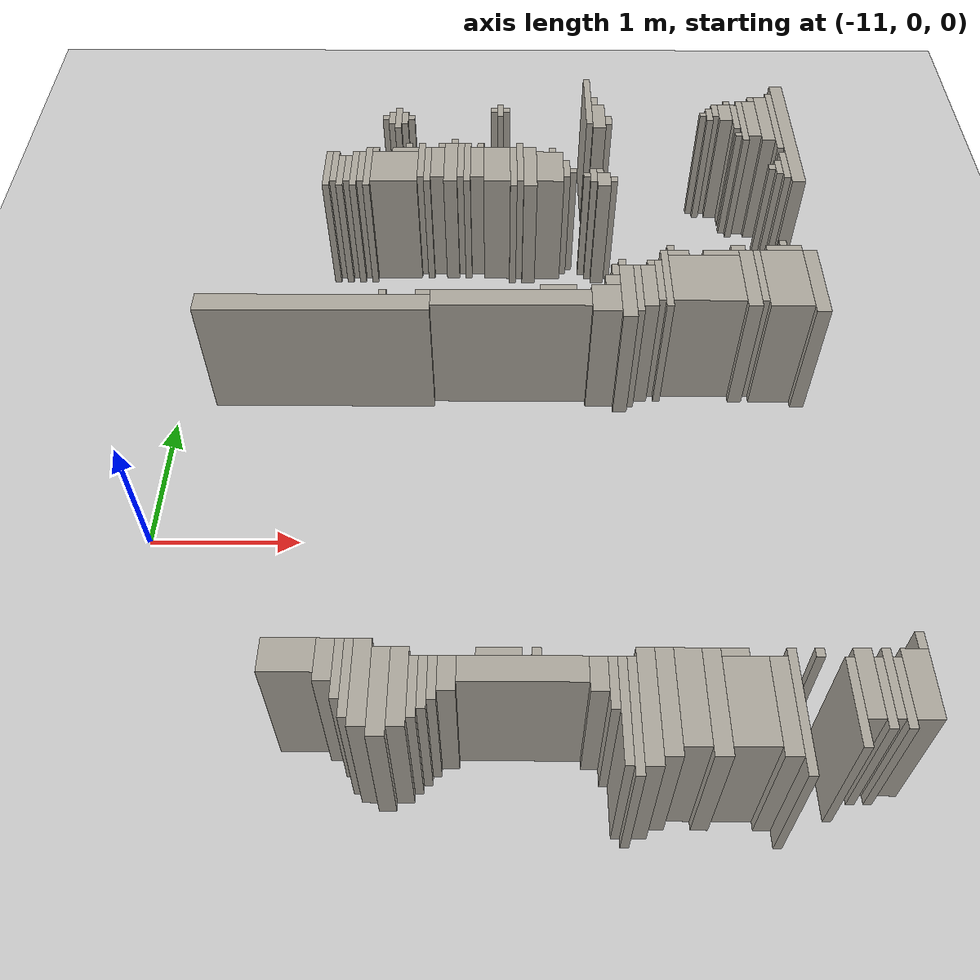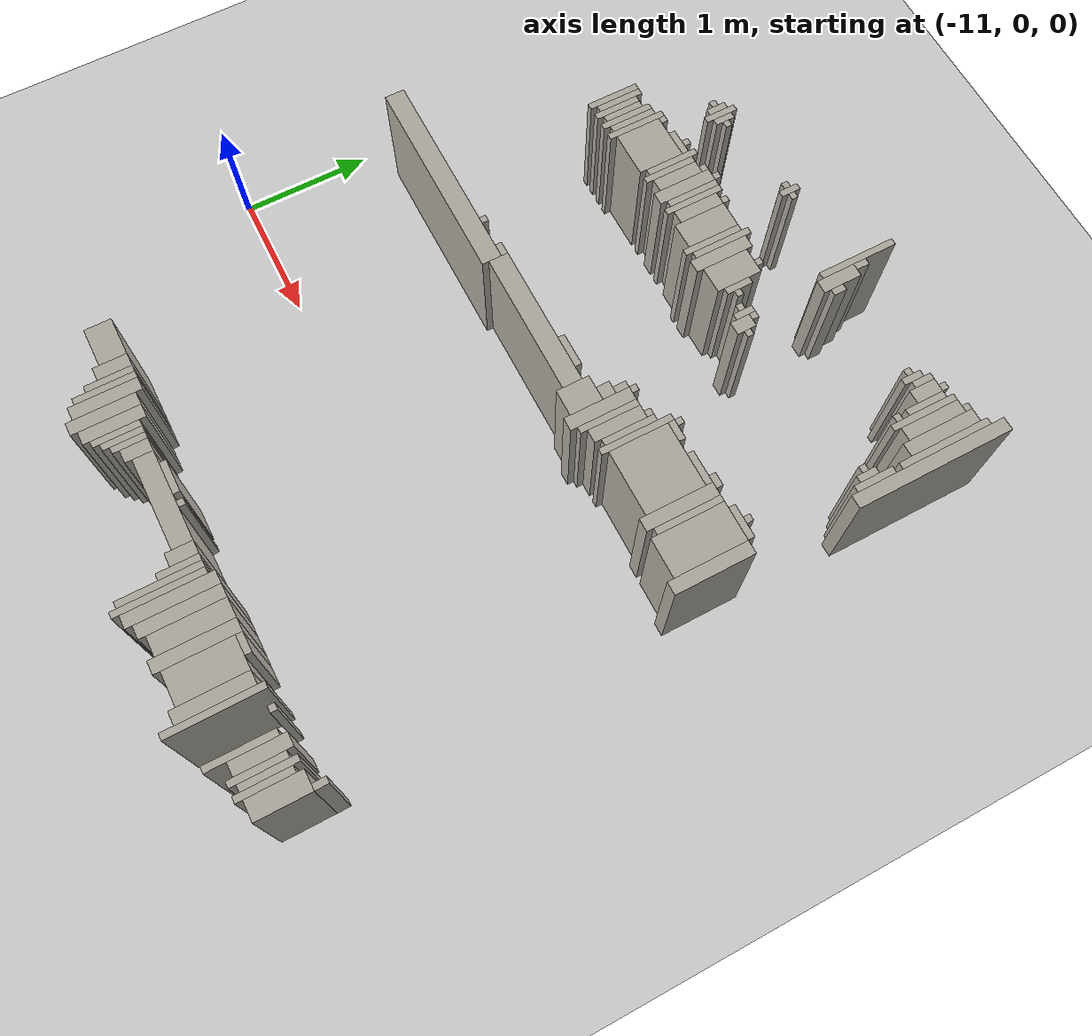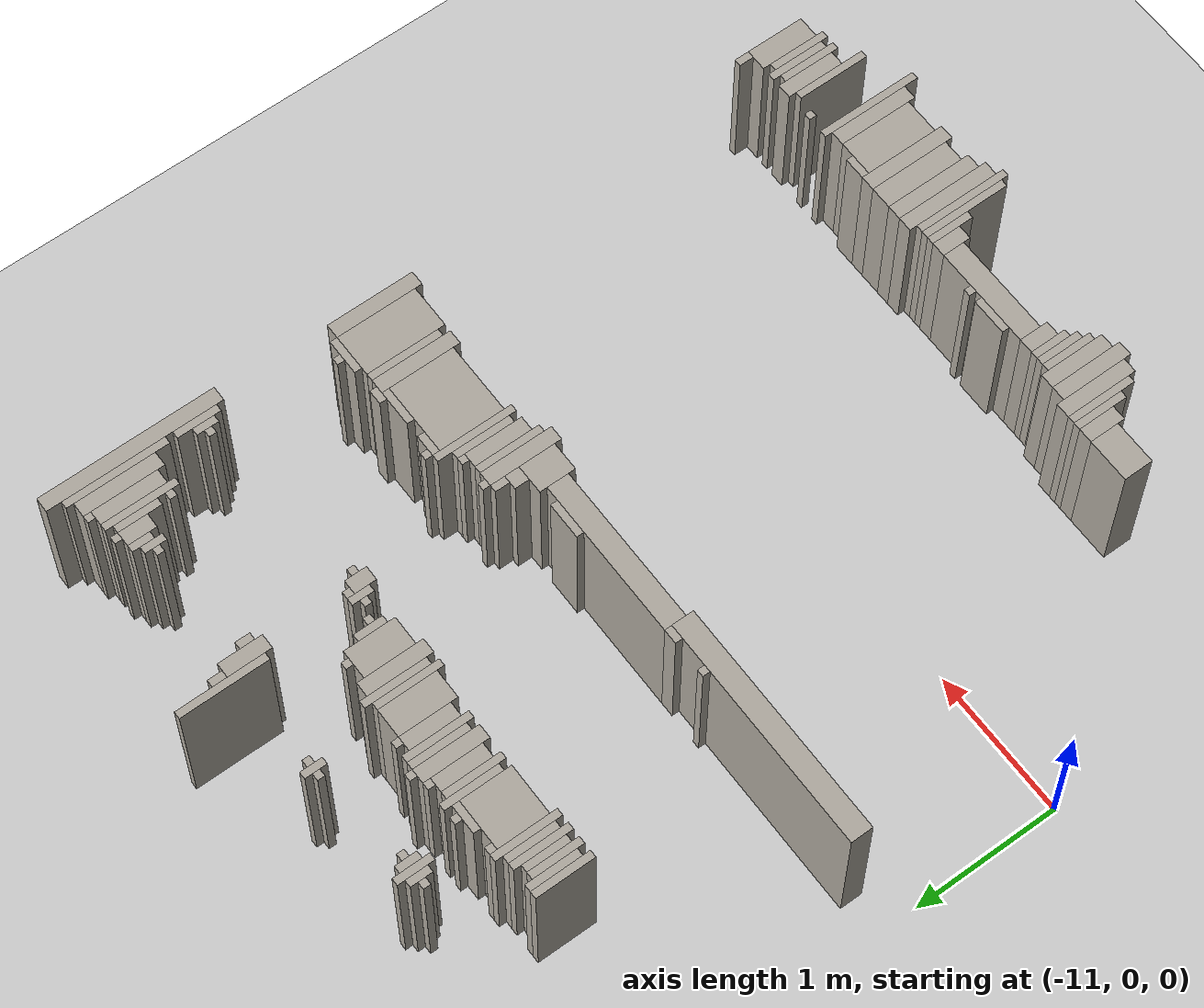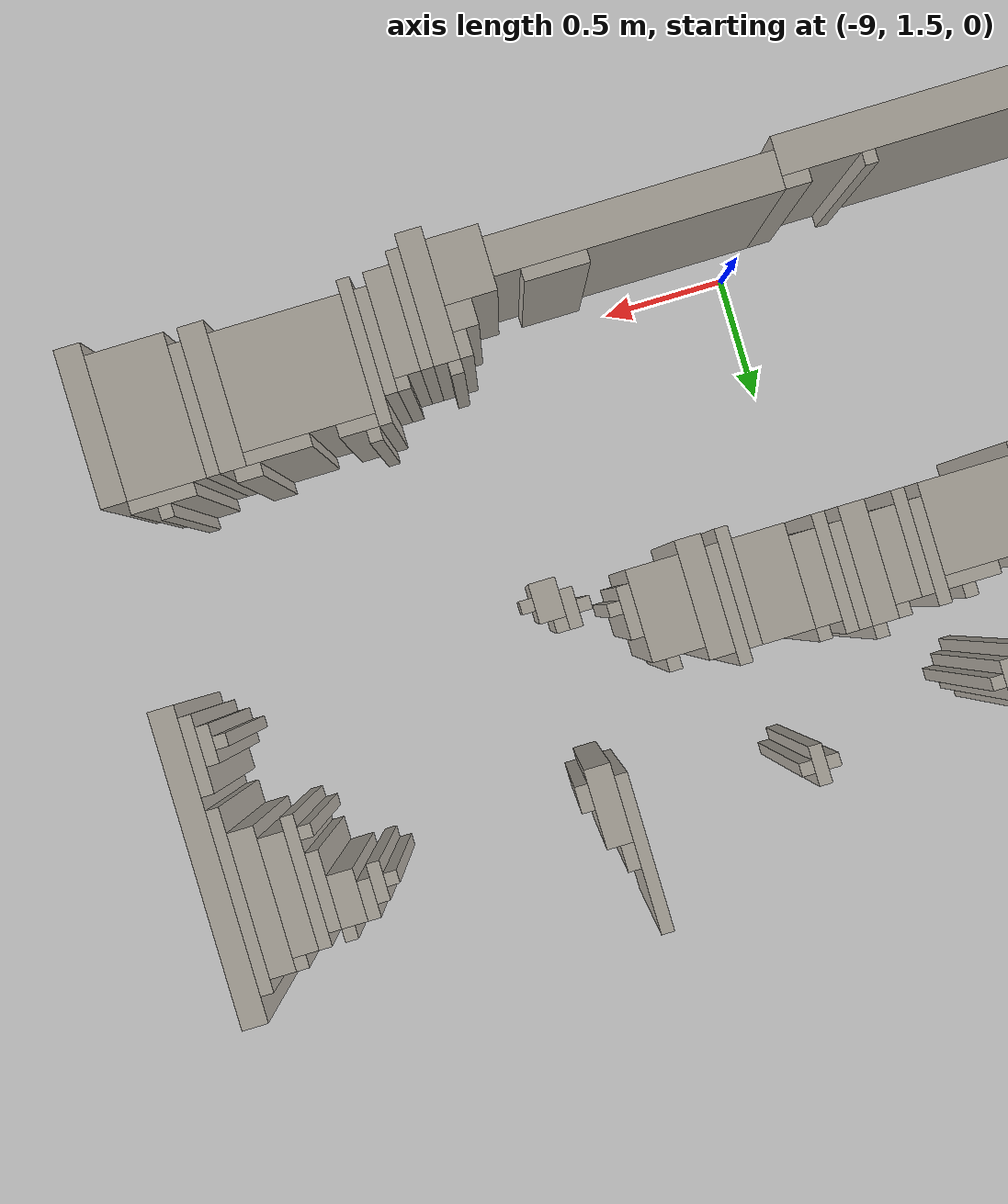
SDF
<sdf version="1.6">
 <world name="fr079_office">
  <include><uri>model://sun</uri></include>
  <include><uri>model://ground_plane</uri></include>
  <model name="fr079_office_walls">
   <static>true</static>
   <link name="w1450">
    <pose>-7.973 -1.681 0.500 0 0 0</pose>
    <collision name="c"><geometry><box><size>0.050 0.650 1.000</size></box></geometry></collision>
    <visual name="v">
     <geometry><box><size>0.050 0.650 1.000</size></box></geometry>
     <material><ambient>0.68 0.66 0.62 1</ambient><diffuse>0.68 0.66 0.62 1</diffuse></material>
    </visual>
   </link>
   <link name="w1451">
    <pose>-7.123 -1.656 0.500 0 0 0</pose>
    <collision name="c"><geometry><box><size>0.050 0.700 1.000</size></box></geometry></collision>
    <visual name="v">
     <geometry><box><size>0.050 0.700 1.000</size></box></geometry>
     <material><ambient>0.68 0.66 0.62 1</ambient><diffuse>0.68 0.66 0.62 1</diffuse></material>
    </visual>
   </link>
   <link name="w1464">
    <pose>-8.023 -1.656 0.500 0 0 0</pose>
    <collision name="c"><geometry><box><size>0.050 0.600 1.000</size></box></geometry></collision>
    <visual name="v">
     <geometry><box><size>0.050 0.600 1.000</size></box></geometry>
     <material><ambient>0.68 0.66 0.62 1</ambient><diffuse>0.68 0.66 0.62 1</diffuse></material>
    </visual>
   </link>
   <link name="w1465">
    <pose>-7.898 -1.631 0.500 0 0 0</pose>
    <collision name="c"><geometry><box><size>0.100 0.650 1.000</size></box></geometry></collision>
    <visual name="v">
     <geometry><box><size>0.100 0.650 1.000</size></box></geometry>
     <material><ambient>0.68 0.66 0.62 1</ambient><diffuse>0.68 0.66 0.62 1</diffuse></material>
    </visual>
   </link>
   <link name="w1484">
    <pose>-7.798 -1.606 0.500 0 0 0</pose>
    <collision name="c"><geometry><box><size>0.100 0.600 1.000</size></box></geometry></collision>
    <visual name="v">
     <geometry><box><size>0.100 0.600 1.000</size></box></geometry>
     <material><ambient>0.68 0.66 0.62 1</ambient><diffuse>0.68 0.66 0.62 1</diffuse></material>
    </visual>
   </link>
   <link name="w1485">
    <pose>-7.548 -1.606 0.500 0 0 0</pose>
    <collision name="c"><geometry><box><size>0.100 0.600 1.000</size></box></geometry></collision>
    <visual name="v">
     <geometry><box><size>0.100 0.600 1.000</size></box></geometry>
     <material><ambient>0.68 0.66 0.62 1</ambient><diffuse>0.68 0.66 0.62 1</diffuse></material>
    </visual>
   </link>
   <link name="w1486">
    <pose>-7.198 -1.631 0.500 0 0 0</pose>
    <collision name="c"><geometry><box><size>0.100 0.550 1.000</size></box></geometry></collision>
    <visual name="v">
     <geometry><box><size>0.100 0.550 1.000</size></box></geometry>
     <material><ambient>0.68 0.66 0.62 1</ambient><diffuse>0.68 0.66 0.62 1</diffuse></material>
    </visual>
   </link>
   <link name="w1500">
    <pose>-7.673 -1.581 0.500 0 0 0</pose>
    <collision name="c"><geometry><box><size>0.150 0.550 1.000</size></box></geometry></collision>
    <visual name="v">
     <geometry><box><size>0.150 0.550 1.000</size></box></geometry>
     <material><ambient>0.68 0.66 0.62 1</ambient><diffuse>0.68 0.66 0.62 1</diffuse></material>
    </visual>
   </link>
   <link name="w1501">
    <pose>-7.373 -1.606 0.500 0 0 0</pose>
    <collision name="c"><geometry><box><size>0.250 0.500 1.000</size></box></geometry></collision>
    <visual name="v">
     <geometry><box><size>0.250 0.500 1.000</size></box></geometry>
     <material><ambient>0.68 0.66 0.62 1</ambient><diffuse>0.68 0.66 0.62 1</diffuse></material>
    </visual>
   </link>
   <link name="w1502">
    <pose>-6.823 -1.606 0.500 0 0 0</pose>
    <collision name="c"><geometry><box><size>0.050 0.500 1.000</size></box></geometry></collision>
    <visual name="v">
     <geometry><box><size>0.050 0.500 1.000</size></box></geometry>
     <material><ambient>0.68 0.66 0.62 1</ambient><diffuse>0.68 0.66 0.62 1</diffuse></material>
    </visual>
   </link>
   <link name="w1514">
    <pose>-9.298 -1.556 0.500 0 0 0</pose>
    <collision name="c"><geometry><box><size>0.100 0.500 1.000</size></box></geometry></collision>
    <visual name="v">
     <geometry><box><size>0.100 0.500 1.000</size></box></geometry>
     <material><ambient>0.68 0.66 0.62 1</ambient><diffuse>0.68 0.66 0.62 1</diffuse></material>
    </visual>
   </link>
   <link name="w1528">
    <pose>-9.398 -1.506 0.500 0 0 0</pose>
    <collision name="c"><geometry><box><size>0.100 0.500 1.000</size></box></geometry></collision>
    <visual name="v">
     <geometry><box><size>0.100 0.500 1.000</size></box></geometry>
     <material><ambient>0.68 0.66 0.62 1</ambient><diffuse>0.68 0.66 0.62 1</diffuse></material>
    </visual>
   </link>
   <link name="w1529">
    <pose>-9.198 -1.531 0.500 0 0 0</pose>
    <collision name="c"><geometry><box><size>0.100 0.450 1.000</size></box></geometry></collision>
    <visual name="v">
     <geometry><box><size>0.100 0.450 1.000</size></box></geometry>
     <material><ambient>0.68 0.66 0.62 1</ambient><diffuse>0.68 0.66 0.62 1</diffuse></material>
    </visual>
   </link>
   <link name="w1530">
    <pose>-6.673 -1.556 0.500 0 0 0</pose>
    <collision name="c"><geometry><box><size>0.050 0.400 1.000</size></box></geometry></collision>
    <visual name="v">
     <geometry><box><size>0.050 0.400 1.000</size></box></geometry>
     <material><ambient>0.68 0.66 0.62 1</ambient><diffuse>0.68 0.66 0.62 1</diffuse></material>
    </visual>
   </link>
   <link name="w1531">
    <pose>-6.573 -1.556 0.500 0 0 0</pose>
    <collision name="c"><geometry><box><size>0.050 0.400 1.000</size></box></geometry></collision>
    <visual name="v">
     <geometry><box><size>0.050 0.400 1.000</size></box></geometry>
     <material><ambient>0.68 0.66 0.62 1</ambient><diffuse>0.68 0.66 0.62 1</diffuse></material>
    </visual>
   </link>
   <link name="w1547">
    <pose>-9.473 -1.481 0.500 0 0 0</pose>
    <collision name="c"><geometry><box><size>0.050 0.450 1.000</size></box></geometry></collision>
    <visual name="v">
     <geometry><box><size>0.050 0.450 1.000</size></box></geometry>
     <material><ambient>0.68 0.66 0.62 1</ambient><diffuse>0.68 0.66 0.62 1</diffuse></material>
    </visual>
   </link>
   <link name="w1548">
    <pose>-9.123 -1.531 0.500 0 0 0</pose>
    <collision name="c"><geometry><box><size>0.050 0.350 1.000</size></box></geometry></collision>
    <visual name="v">
     <geometry><box><size>0.050 0.350 1.000</size></box></geometry>
     <material><ambient>0.68 0.66 0.62 1</ambient><diffuse>0.68 0.66 0.62 1</diffuse></material>
    </visual>
   </link>
   <link name="w1549">
    <pose>-6.748 -1.506 0.500 0 0 0</pose>
    <collision name="c"><geometry><box><size>0.100 0.400 1.000</size></box></geometry></collision>
    <visual name="v">
     <geometry><box><size>0.100 0.400 1.000</size></box></geometry>
     <material><ambient>0.68 0.66 0.62 1</ambient><diffuse>0.68 0.66 0.62 1</diffuse></material>
    </visual>
   </link>
   <link name="w1550">
    <pose>-6.623 -1.506 0.500 0 0 0</pose>
    <collision name="c"><geometry><box><size>0.050 0.400 1.000</size></box></geometry></collision>
    <visual name="v">
     <geometry><box><size>0.050 0.400 1.000</size></box></geometry>
     <material><ambient>0.68 0.66 0.62 1</ambient><diffuse>0.68 0.66 0.62 1</diffuse></material>
    </visual>
   </link>
   <link name="w1551">
    <pose>-6.473 -1.506 0.500 0 0 0</pose>
    <collision name="c"><geometry><box><size>0.150 0.400 1.000</size></box></geometry></collision>
    <visual name="v">
     <geometry><box><size>0.150 0.400 1.000</size></box></geometry>
     <material><ambient>0.68 0.66 0.62 1</ambient><diffuse>0.68 0.66 0.62 1</diffuse></material>
    </visual>
   </link>
   <link name="w1572">
    <pose>-9.073 -1.506 0.500 0 0 0</pose>
    <collision name="c"><geometry><box><size>0.050 0.300 1.000</size></box></geometry></collision>
    <visual name="v">
     <geometry><box><size>0.050 0.300 1.000</size></box></geometry>
     <material><ambient>0.68 0.66 0.62 1</ambient><diffuse>0.68 0.66 0.62 1</diffuse></material>
    </visual>
   </link>
   <link name="w1573">
    <pose>-8.073 -1.506 0.500 0 0 0</pose>
    <collision name="c"><geometry><box><size>0.050 0.300 1.000</size></box></geometry></collision>
    <visual name="v">
     <geometry><box><size>0.050 0.300 1.000</size></box></geometry>
     <material><ambient>0.68 0.66 0.62 1</ambient><diffuse>0.68 0.66 0.62 1</diffuse></material>
    </visual>
   </link>
   <link name="w1605">
    <pose>-9.523 -1.431 0.500 0 0 0</pose>
    <collision name="c"><geometry><box><size>0.050 0.350 1.000</size></box></geometry></collision>
    <visual name="v">
     <geometry><box><size>0.050 0.350 1.000</size></box></geometry>
     <material><ambient>0.68 0.66 0.62 1</ambient><diffuse>0.68 0.66 0.62 1</diffuse></material>
    </visual>
   </link>
   <link name="w1606">
    <pose>-9.023 -1.481 0.500 0 0 0</pose>
    <collision name="c"><geometry><box><size>0.050 0.250 1.000</size></box></geometry></collision>
    <visual name="v">
     <geometry><box><size>0.050 0.250 1.000</size></box></geometry>
     <material><ambient>0.68 0.66 0.62 1</ambient><diffuse>0.68 0.66 0.62 1</diffuse></material>
    </visual>
   </link>
   <link name="w1633">
    <pose>-8.948 -1.456 0.500 0 0 0</pose>
    <collision name="c"><geometry><box><size>0.100 0.200 1.000</size></box></geometry></collision>
    <visual name="v">
     <geometry><box><size>0.100 0.200 1.000</size></box></geometry>
     <material><ambient>0.68 0.66 0.62 1</ambient><diffuse>0.68 0.66 0.62 1</diffuse></material>
    </visual>
   </link>
   <link name="w1634">
    <pose>-8.148 -1.456 0.500 0 0 0</pose>
    <collision name="c"><geometry><box><size>0.100 0.200 1.000</size></box></geometry></collision>
    <visual name="v">
     <geometry><box><size>0.100 0.200 1.000</size></box></geometry>
     <material><ambient>0.68 0.66 0.62 1</ambient><diffuse>0.68 0.66 0.62 1</diffuse></material>
    </visual>
   </link>
   <link name="w1665">
    <pose>-9.598 -1.381 0.500 0 0 0</pose>
    <collision name="c"><geometry><box><size>0.100 0.250 1.000</size></box></geometry></collision>
    <visual name="v">
     <geometry><box><size>0.100 0.250 1.000</size></box></geometry>
     <material><ambient>0.68 0.66 0.62 1</ambient><diffuse>0.68 0.66 0.62 1</diffuse></material>
    </visual>
   </link>
   <link name="w1666">
    <pose>-8.548 -1.431 0.500 0 0 0</pose>
    <collision name="c"><geometry><box><size>0.700 0.150 1.000</size></box></geometry></collision>
    <visual name="v">
     <geometry><box><size>0.700 0.150 1.000</size></box></geometry>
     <material><ambient>0.68 0.66 0.62 1</ambient><diffuse>0.68 0.66 0.62 1</diffuse></material>
    </visual>
   </link>
   <link name="w1687">
    <pose>-9.798 -1.356 0.500 0 0 0</pose>
    <collision name="c"><geometry><box><size>0.300 0.200 1.000</size></box></geometry></collision>
    <visual name="v">
     <geometry><box><size>0.300 0.200 1.000</size></box></geometry>
     <material><ambient>0.68 0.66 0.62 1</ambient><diffuse>0.68 0.66 0.62 1</diffuse></material>
    </visual>
   </link>
   <link name="w1706">
    <pose>-8.673 -1.331 0.500 0 0 0</pose>
    <collision name="c"><geometry><box><size>0.250 0.050 1.000</size></box></geometry></collision>
    <visual name="v">
     <geometry><box><size>0.250 0.050 1.000</size></box></geometry>
     <material><ambient>0.68 0.66 0.62 1</ambient><diffuse>0.68 0.66 0.62 1</diffuse></material>
    </visual>
   </link>
   <link name="w1707">
    <pose>-8.473 -1.331 0.500 0 0 0</pose>
    <collision name="c"><geometry><box><size>0.050 0.050 1.000</size></box></geometry></collision>
    <visual name="v">
     <geometry><box><size>0.050 0.050 1.000</size></box></geometry>
     <material><ambient>0.68 0.66 0.62 1</ambient><diffuse>0.68 0.66 0.62 1</diffuse></material>
    </visual>
   </link>
   <link name="w1708">
    <pose>-7.423 -1.331 0.500 0 0 0</pose>
    <collision name="c"><geometry><box><size>0.150 0.050 1.000</size></box></geometry></collision>
    <visual name="v">
     <geometry><box><size>0.150 0.050 1.000</size></box></geometry>
     <material><ambient>0.68 0.66 0.62 1</ambient><diffuse>0.68 0.66 0.62 1</diffuse></material>
    </visual>
   </link>
   <link name="w1709">
    <pose>-6.973 -1.331 0.500 0 0 0</pose>
    <collision name="c"><geometry><box><size>0.050 0.050 1.000</size></box></geometry></collision>
    <visual name="v">
     <geometry><box><size>0.050 0.050 1.000</size></box></geometry>
     <material><ambient>0.68 0.66 0.62 1</ambient><diffuse>0.68 0.66 0.62 1</diffuse></material>
    </visual>
   </link>
   <link name="w1721">
    <pose>-6.423 -1.256 0.500 0 0 0</pose>
    <collision name="c"><geometry><box><size>0.050 0.100 1.000</size></box></geometry></collision>
    <visual name="v">
     <geometry><box><size>0.050 0.100 1.000</size></box></geometry>
     <material><ambient>0.68 0.66 0.62 1</ambient><diffuse>0.68 0.66 0.62 1</diffuse></material>
    </visual>
   </link>
   <link name="w1884">
    <pose>-7.798 1.394 0.500 0 0 0</pose>
    <collision name="c"><geometry><box><size>0.100 0.500 1.000</size></box></geometry></collision>
    <visual name="v">
     <geometry><box><size>0.100 0.500 1.000</size></box></geometry>
     <material><ambient>0.68 0.66 0.62 1</ambient><diffuse>0.68 0.66 0.62 1</diffuse></material>
    </visual>
   </link>
   <link name="w1912">
    <pose>-9.948 1.269 0.500 0 0 0</pose>
    <collision name="c"><geometry><box><size>1.600 0.150 1.000</size></box></geometry></collision>
    <visual name="v">
     <geometry><box><size>1.600 0.150 1.000</size></box></geometry>
     <material><ambient>0.68 0.66 0.62 1</ambient><diffuse>0.68 0.66 0.62 1</diffuse></material>
    </visual>
   </link>
   <link name="w1913">
    <pose>-7.948 1.319 0.500 0 0 0</pose>
    <collision name="c"><geometry><box><size>0.200 0.250 1.000</size></box></geometry></collision>
    <visual name="v">
     <geometry><box><size>0.200 0.250 1.000</size></box></geometry>
     <material><ambient>0.68 0.66 0.62 1</ambient><diffuse>0.68 0.66 0.62 1</diffuse></material>
    </visual>
   </link>
   <link name="w1914">
    <pose>-7.723 1.419 0.500 0 0 0</pose>
    <collision name="c"><geometry><box><size>0.050 0.450 1.000</size></box></geometry></collision>
    <visual name="v">
     <geometry><box><size>0.050 0.450 1.000</size></box></geometry>
     <material><ambient>0.68 0.66 0.62 1</ambient><diffuse>0.68 0.66 0.62 1</diffuse></material>
    </visual>
   </link>
   <link name="w1915">
    <pose>-6.498 1.494 0.500 0 0 0</pose>
    <collision name="c"><geometry><box><size>0.100 0.600 1.000</size></box></geometry></collision>
    <visual name="v">
     <geometry><box><size>0.100 0.600 1.000</size></box></geometry>
     <material><ambient>0.68 0.66 0.62 1</ambient><diffuse>0.68 0.66 0.62 1</diffuse></material>
    </visual>
   </link>
   <link name="w1944">
    <pose>-8.598 1.319 0.500 0 0 0</pose>
    <collision name="c"><geometry><box><size>1.100 0.150 1.000</size></box></geometry></collision>
    <visual name="v">
     <geometry><box><size>1.100 0.150 1.000</size></box></geometry>
     <material><ambient>0.68 0.66 0.62 1</ambient><diffuse>0.68 0.66 0.62 1</diffuse></material>
    </visual>
   </link>
   <link name="w1945">
    <pose>-7.648 1.444 0.500 0 0 0</pose>
    <collision name="c"><geometry><box><size>0.100 0.400 1.000</size></box></geometry></collision>
    <visual name="v">
     <geometry><box><size>0.100 0.400 1.000</size></box></geometry>
     <material><ambient>0.68 0.66 0.62 1</ambient><diffuse>0.68 0.66 0.62 1</diffuse></material>
    </visual>
   </link>
   <link name="w1946">
    <pose>-7.523 1.519 0.500 0 0 0</pose>
    <collision name="c"><geometry><box><size>0.050 0.550 1.000</size></box></geometry></collision>
    <visual name="v">
     <geometry><box><size>0.050 0.550 1.000</size></box></geometry>
     <material><ambient>0.68 0.66 0.62 1</ambient><diffuse>0.68 0.66 0.62 1</diffuse></material>
    </visual>
   </link>
   <link name="w1947">
    <pose>-6.948 1.519 0.500 0 0 0</pose>
    <collision name="c"><geometry><box><size>0.100 0.550 1.000</size></box></geometry></collision>
    <visual name="v">
     <geometry><box><size>0.100 0.550 1.000</size></box></geometry>
     <material><ambient>0.68 0.66 0.62 1</ambient><diffuse>0.68 0.66 0.62 1</diffuse></material>
    </visual>
   </link>
   <link name="w1948">
    <pose>-6.698 1.519 0.500 0 0 0</pose>
    <collision name="c"><geometry><box><size>0.300 0.550 1.000</size></box></geometry></collision>
    <visual name="v">
     <geometry><box><size>0.300 0.550 1.000</size></box></geometry>
     <material><ambient>0.68 0.66 0.62 1</ambient><diffuse>0.68 0.66 0.62 1</diffuse></material>
    </visual>
   </link>
   <link name="w1962">
    <pose>-7.573 1.494 0.500 0 0 0</pose>
    <collision name="c"><geometry><box><size>0.050 0.400 1.000</size></box></geometry></collision>
    <visual name="v">
     <geometry><box><size>0.050 0.400 1.000</size></box></geometry>
     <material><ambient>0.68 0.66 0.62 1</ambient><diffuse>0.68 0.66 0.62 1</diffuse></material>
    </visual>
   </link>
   <link name="w1963">
    <pose>-7.248 1.519 0.500 0 0 0</pose>
    <collision name="c"><geometry><box><size>0.500 0.450 1.000</size></box></geometry></collision>
    <visual name="v">
     <geometry><box><size>0.500 0.450 1.000</size></box></geometry>
     <material><ambient>0.68 0.66 0.62 1</ambient><diffuse>0.68 0.66 0.62 1</diffuse></material>
    </visual>
   </link>
   <link name="w1964">
    <pose>-6.873 1.544 0.500 0 0 0</pose>
    <collision name="c"><geometry><box><size>0.050 0.500 1.000</size></box></geometry></collision>
    <visual name="v">
     <geometry><box><size>0.050 0.500 1.000</size></box></geometry>
     <material><ambient>0.68 0.66 0.62 1</ambient><diffuse>0.68 0.66 0.62 1</diffuse></material>
    </visual>
   </link>
   <link name="w1975">
    <pose>-9.473 1.369 0.500 0 0 0</pose>
    <collision name="c"><geometry><box><size>0.050 0.050 1.000</size></box></geometry></collision>
    <visual name="v">
     <geometry><box><size>0.050 0.050 1.000</size></box></geometry>
     <material><ambient>0.68 0.66 0.62 1</ambient><diffuse>0.68 0.66 0.62 1</diffuse></material>
    </visual>
   </link>
   <link name="w1976">
    <pose>-9.198 1.369 0.500 0 0 0</pose>
    <collision name="c"><geometry><box><size>0.100 0.050 1.000</size></box></geometry></collision>
    <visual name="v">
     <geometry><box><size>0.100 0.050 1.000</size></box></geometry>
     <material><ambient>0.68 0.66 0.62 1</ambient><diffuse>0.68 0.66 0.62 1</diffuse></material>
    </visual>
   </link>
   <link name="w1989">
    <pose>-8.273 1.419 0.500 0 0 0</pose>
    <collision name="c"><geometry><box><size>0.250 0.050 1.000</size></box></geometry></collision>
    <visual name="v">
     <geometry><box><size>0.250 0.050 1.000</size></box></geometry>
     <material><ambient>0.68 0.66 0.62 1</ambient><diffuse>0.68 0.66 0.62 1</diffuse></material>
    </visual>
   </link>
   <link name="w2009">
    <pose>-7.898 1.494 0.500 0 0 0</pose>
    <collision name="c"><geometry><box><size>0.100 0.100 1.000</size></box></geometry></collision>
    <visual name="v">
     <geometry><box><size>0.100 0.100 1.000</size></box></geometry>
     <material><ambient>0.68 0.66 0.62 1</ambient><diffuse>0.68 0.66 0.62 1</diffuse></material>
    </visual>
   </link>
   <link name="w2040">
    <pose>-7.873 1.594 0.500 0 0 0</pose>
    <collision name="c"><geometry><box><size>0.050 0.100 1.000</size></box></geometry></collision>
    <visual name="v">
     <geometry><box><size>0.050 0.100 1.000</size></box></geometry>
     <material><ambient>0.68 0.66 0.62 1</ambient><diffuse>0.68 0.66 0.62 1</diffuse></material>
    </visual>
   </link>
   <link name="w2071">
    <pose>-7.823 1.669 0.500 0 0 0</pose>
    <collision name="c"><geometry><box><size>0.050 0.050 1.000</size></box></geometry></collision>
    <visual name="v">
     <geometry><box><size>0.050 0.050 1.000</size></box></geometry>
     <material><ambient>0.68 0.66 0.62 1</ambient><diffuse>0.68 0.66 0.62 1</diffuse></material>
    </visual>
   </link>
   <link name="w2072">
    <pose>-7.623 1.669 0.500 0 0 0</pose>
    <collision name="c"><geometry><box><size>0.050 0.050 1.000</size></box></geometry></collision>
    <visual name="v">
     <geometry><box><size>0.050 0.050 1.000</size></box></geometry>
     <material><ambient>0.68 0.66 0.62 1</ambient><diffuse>0.68 0.66 0.62 1</diffuse></material>
    </visual>
   </link>
   <link name="w2095">
    <pose>-7.423 1.769 0.500 0 0 0</pose>
    <collision name="c"><geometry><box><size>0.150 0.050 1.000</size></box></geometry></collision>
    <visual name="v">
     <geometry><box><size>0.150 0.050 1.000</size></box></geometry>
     <material><ambient>0.68 0.66 0.62 1</ambient><diffuse>0.68 0.66 0.62 1</diffuse></material>
    </visual>
   </link>
   <link name="w2096">
    <pose>-7.123 1.769 0.500 0 0 0</pose>
    <collision name="c"><geometry><box><size>0.250 0.050 1.000</size></box></geometry></collision>
    <visual name="v">
     <geometry><box><size>0.250 0.050 1.000</size></box></geometry>
     <material><ambient>0.68 0.66 0.62 1</ambient><diffuse>0.68 0.66 0.62 1</diffuse></material>
    </visual>
   </link>
   <link name="w2110">
    <pose>-7.473 1.819 0.500 0 0 0</pose>
    <collision name="c"><geometry><box><size>0.050 0.050 1.000</size></box></geometry></collision>
    <visual name="v">
     <geometry><box><size>0.050 0.050 1.000</size></box></geometry>
     <material><ambient>0.68 0.66 0.62 1</ambient><diffuse>0.68 0.66 0.62 1</diffuse></material>
    </visual>
   </link>
   <link name="w2111">
    <pose>-6.998 1.819 0.500 0 0 0</pose>
    <collision name="c"><geometry><box><size>0.100 0.050 1.000</size></box></geometry></collision>
    <visual name="v">
     <geometry><box><size>0.100 0.050 1.000</size></box></geometry>
     <material><ambient>0.68 0.66 0.62 1</ambient><diffuse>0.68 0.66 0.62 1</diffuse></material>
    </visual>
   </link>
   <link name="w2112">
    <pose>-6.673 1.819 0.500 0 0 0</pose>
    <collision name="c"><geometry><box><size>0.250 0.050 1.000</size></box></geometry></collision>
    <visual name="v">
     <geometry><box><size>0.250 0.050 1.000</size></box></geometry>
     <material><ambient>0.68 0.66 0.62 1</ambient><diffuse>0.68 0.66 0.62 1</diffuse></material>
    </visual>
   </link>
   <link name="w2133">
    <pose>-6.673 1.869 0.500 0 0 0</pose>
    <collision name="c"><geometry><box><size>0.050 0.050 1.000</size></box></geometry></collision>
    <visual name="v">
     <geometry><box><size>0.050 0.050 1.000</size></box></geometry>
     <material><ambient>0.68 0.66 0.62 1</ambient><diffuse>0.68 0.66 0.62 1</diffuse></material>
    </visual>
   </link>
   <link name="w2270">
    <pose>-9.973 2.694 0.500 0 0 0</pose>
    <collision name="c"><geometry><box><size>0.050 0.400 1.000</size></box></geometry></collision>
    <visual name="v">
     <geometry><box><size>0.050 0.400 1.000</size></box></geometry>
     <material><ambient>0.68 0.66 0.62 1</ambient><diffuse>0.68 0.66 0.62 1</diffuse></material>
    </visual>
   </link>
   <link name="w2271">
    <pose>-9.873 2.669 0.500 0 0 0</pose>
    <collision name="c"><geometry><box><size>0.050 0.350 1.000</size></box></geometry></collision>
    <visual name="v">
     <geometry><box><size>0.050 0.350 1.000</size></box></geometry>
     <material><ambient>0.68 0.66 0.62 1</ambient><diffuse>0.68 0.66 0.62 1</diffuse></material>
    </visual>
   </link>
   <link name="w2272">
    <pose>-9.773 2.694 0.500 0 0 0</pose>
    <collision name="c"><geometry><box><size>0.050 0.400 1.000</size></box></geometry></collision>
    <visual name="v">
     <geometry><box><size>0.050 0.400 1.000</size></box></geometry>
     <material><ambient>0.68 0.66 0.62 1</ambient><diffuse>0.68 0.66 0.62 1</diffuse></material>
    </visual>
   </link>
   <link name="w2273">
    <pose>-9.673 2.719 0.500 0 0 0</pose>
    <collision name="c"><geometry><box><size>0.050 0.450 1.000</size></box></geometry></collision>
    <visual name="v">
     <geometry><box><size>0.050 0.450 1.000</size></box></geometry>
     <material><ambient>0.68 0.66 0.62 1</ambient><diffuse>0.68 0.66 0.62 1</diffuse></material>
    </visual>
   </link>
   <link name="w2274">
    <pose>-8.573 2.719 0.500 0 0 0</pose>
    <collision name="c"><geometry><box><size>0.050 0.450 1.000</size></box></geometry></collision>
    <visual name="v">
     <geometry><box><size>0.050 0.450 1.000</size></box></geometry>
     <material><ambient>0.68 0.66 0.62 1</ambient><diffuse>0.68 0.66 0.62 1</diffuse></material>
    </visual>
   </link>
   <link name="w2275">
    <pose>-8.448 2.719 0.500 0 0 0</pose>
    <collision name="c"><geometry><box><size>0.100 0.450 1.000</size></box></geometry></collision>
    <visual name="v">
     <geometry><box><size>0.100 0.450 1.000</size></box></geometry>
     <material><ambient>0.68 0.66 0.62 1</ambient><diffuse>0.68 0.66 0.62 1</diffuse></material>
    </visual>
   </link>
   <link name="w2276">
    <pose>-7.898 2.569 0.500 0 0 0</pose>
    <collision name="c"><geometry><box><size>0.100 0.150 1.000</size></box></geometry></collision>
    <visual name="v">
     <geometry><box><size>0.100 0.150 1.000</size></box></geometry>
     <material><ambient>0.68 0.66 0.62 1</ambient><diffuse>0.68 0.66 0.62 1</diffuse></material>
    </visual>
   </link>
   <link name="w2286">
    <pose>-9.923 2.719 0.500 0 0 0</pose>
    <collision name="c"><geometry><box><size>0.050 0.350 1.000</size></box></geometry></collision>
    <visual name="v">
     <geometry><box><size>0.050 0.350 1.000</size></box></geometry>
     <material><ambient>0.68 0.66 0.62 1</ambient><diffuse>0.68 0.66 0.62 1</diffuse></material>
    </visual>
   </link>
   <link name="w2287">
    <pose>-9.823 2.694 0.500 0 0 0</pose>
    <collision name="c"><geometry><box><size>0.050 0.300 1.000</size></box></geometry></collision>
    <visual name="v">
     <geometry><box><size>0.050 0.300 1.000</size></box></geometry>
     <material><ambient>0.68 0.66 0.62 1</ambient><diffuse>0.68 0.66 0.62 1</diffuse></material>
    </visual>
   </link>
   <link name="w2288">
    <pose>-9.723 2.719 0.500 0 0 0</pose>
    <collision name="c"><geometry><box><size>0.050 0.350 1.000</size></box></geometry></collision>
    <visual name="v">
     <geometry><box><size>0.050 0.350 1.000</size></box></geometry>
     <material><ambient>0.68 0.66 0.62 1</ambient><diffuse>0.68 0.66 0.62 1</diffuse></material>
    </visual>
   </link>
   <link name="w2289">
    <pose>-9.473 2.719 0.500 0 0 0</pose>
    <collision name="c"><geometry><box><size>0.350 0.350 1.000</size></box></geometry></collision>
    <visual name="v">
     <geometry><box><size>0.350 0.350 1.000</size></box></geometry>
     <material><ambient>0.68 0.66 0.62 1</ambient><diffuse>0.68 0.66 0.62 1</diffuse></material>
    </visual>
   </link>
   <link name="w2290">
    <pose>-9.223 2.744 0.500 0 0 0</pose>
    <collision name="c"><geometry><box><size>0.050 0.400 1.000</size></box></geometry></collision>
    <visual name="v">
     <geometry><box><size>0.050 0.400 1.000</size></box></geometry>
     <material><ambient>0.68 0.66 0.62 1</ambient><diffuse>0.68 0.66 0.62 1</diffuse></material>
    </visual>
   </link>
   <link name="w2291">
    <pose>-9.048 2.769 0.500 0 0 0</pose>
    <collision name="c"><geometry><box><size>0.100 0.450 1.000</size></box></geometry></collision>
    <visual name="v">
     <geometry><box><size>0.100 0.450 1.000</size></box></geometry>
     <material><ambient>0.68 0.66 0.62 1</ambient><diffuse>0.68 0.66 0.62 1</diffuse></material>
    </visual>
   </link>
   <link name="w2292">
    <pose>-8.923 2.769 0.500 0 0 0</pose>
    <collision name="c"><geometry><box><size>0.050 0.450 1.000</size></box></geometry></collision>
    <visual name="v">
     <geometry><box><size>0.050 0.450 1.000</size></box></geometry>
     <material><ambient>0.68 0.66 0.62 1</ambient><diffuse>0.68 0.66 0.62 1</diffuse></material>
    </visual>
   </link>
   <link name="w2293">
    <pose>-8.698 2.744 0.500 0 0 0</pose>
    <collision name="c"><geometry><box><size>0.200 0.400 1.000</size></box></geometry></collision>
    <visual name="v">
     <geometry><box><size>0.200 0.400 1.000</size></box></geometry>
     <material><ambient>0.68 0.66 0.62 1</ambient><diffuse>0.68 0.66 0.62 1</diffuse></material>
    </visual>
   </link>
   <link name="w2294">
    <pose>-8.523 2.769 0.500 0 0 0</pose>
    <collision name="c"><geometry><box><size>0.050 0.450 1.000</size></box></geometry></collision>
    <visual name="v">
     <geometry><box><size>0.050 0.450 1.000</size></box></geometry>
     <material><ambient>0.68 0.66 0.62 1</ambient><diffuse>0.68 0.66 0.62 1</diffuse></material>
    </visual>
   </link>
   <link name="w2295">
    <pose>-8.298 2.719 0.500 0 0 0</pose>
    <collision name="c"><geometry><box><size>0.200 0.350 1.000</size></box></geometry></collision>
    <visual name="v">
     <geometry><box><size>0.200 0.350 1.000</size></box></geometry>
     <material><ambient>0.68 0.66 0.62 1</ambient><diffuse>0.68 0.66 0.62 1</diffuse></material>
    </visual>
   </link>
   <link name="w2296">
    <pose>-7.973 2.619 0.500 0 0 0</pose>
    <collision name="c"><geometry><box><size>0.050 0.150 1.000</size></box></geometry></collision>
    <visual name="v">
     <geometry><box><size>0.050 0.150 1.000</size></box></geometry>
     <material><ambient>0.68 0.66 0.62 1</ambient><diffuse>0.68 0.66 0.62 1</diffuse></material>
    </visual>
   </link>
   <link name="w2297">
    <pose>-7.823 2.569 0.500 0 0 0</pose>
    <collision name="c"><geometry><box><size>0.050 0.050 1.000</size></box></geometry></collision>
    <visual name="v">
     <geometry><box><size>0.050 0.050 1.000</size></box></geometry>
     <material><ambient>0.68 0.66 0.62 1</ambient><diffuse>0.68 0.66 0.62 1</diffuse></material>
    </visual>
   </link>
   <link name="w2298">
    <pose>-6.448 3.144 0.500 0 0 0</pose>
    <collision name="c"><geometry><box><size>0.100 1.200 1.000</size></box></geometry></collision>
    <visual name="v">
     <geometry><box><size>0.100 1.200 1.000</size></box></geometry>
     <material><ambient>0.68 0.66 0.62 1</ambient><diffuse>0.68 0.66 0.62 1</diffuse></material>
    </visual>
   </link>
   <link name="w2312">
    <pose>-9.273 2.794 0.500 0 0 0</pose>
    <collision name="c"><geometry><box><size>0.050 0.400 1.000</size></box></geometry></collision>
    <visual name="v">
     <geometry><box><size>0.050 0.400 1.000</size></box></geometry>
     <material><ambient>0.68 0.66 0.62 1</ambient><diffuse>0.68 0.66 0.62 1</diffuse></material>
    </visual>
   </link>
   <link name="w2313">
    <pose>-9.148 2.769 0.500 0 0 0</pose>
    <collision name="c"><geometry><box><size>0.100 0.350 1.000</size></box></geometry></collision>
    <visual name="v">
     <geometry><box><size>0.100 0.350 1.000</size></box></geometry>
     <material><ambient>0.68 0.66 0.62 1</ambient><diffuse>0.68 0.66 0.62 1</diffuse></material>
    </visual>
   </link>
   <link name="w2314">
    <pose>-8.973 2.794 0.500 0 0 0</pose>
    <collision name="c"><geometry><box><size>0.050 0.400 1.000</size></box></geometry></collision>
    <visual name="v">
     <geometry><box><size>0.050 0.400 1.000</size></box></geometry>
     <material><ambient>0.68 0.66 0.62 1</ambient><diffuse>0.68 0.66 0.62 1</diffuse></material>
    </visual>
   </link>
   <link name="w2315">
    <pose>-8.848 2.769 0.500 0 0 0</pose>
    <collision name="c"><geometry><box><size>0.100 0.350 1.000</size></box></geometry></collision>
    <visual name="v">
     <geometry><box><size>0.100 0.350 1.000</size></box></geometry>
     <material><ambient>0.68 0.66 0.62 1</ambient><diffuse>0.68 0.66 0.62 1</diffuse></material>
    </visual>
   </link>
   <link name="w2316">
    <pose>-8.173 2.694 0.500 0 0 0</pose>
    <collision name="c"><geometry><box><size>0.050 0.200 1.000</size></box></geometry></collision>
    <visual name="v">
     <geometry><box><size>0.050 0.200 1.000</size></box></geometry>
     <material><ambient>0.68 0.66 0.62 1</ambient><diffuse>0.68 0.66 0.62 1</diffuse></material>
    </visual>
   </link>
   <link name="w2317">
    <pose>-8.023 2.619 0.500 0 0 0</pose>
    <collision name="c"><geometry><box><size>0.050 0.050 1.000</size></box></geometry></collision>
    <visual name="v">
     <geometry><box><size>0.050 0.050 1.000</size></box></geometry>
     <material><ambient>0.68 0.66 0.62 1</ambient><diffuse>0.68 0.66 0.62 1</diffuse></material>
    </visual>
   </link>
   <link name="w2318">
    <pose>-6.523 2.744 0.500 0 0 0</pose>
    <collision name="c"><geometry><box><size>0.050 0.300 1.000</size></box></geometry></collision>
    <visual name="v">
     <geometry><box><size>0.050 0.300 1.000</size></box></geometry>
     <material><ambient>0.68 0.66 0.62 1</ambient><diffuse>0.68 0.66 0.62 1</diffuse></material>
    </visual>
   </link>
   <link name="w2323">
    <pose>-8.123 2.669 0.500 0 0 0</pose>
    <collision name="c"><geometry><box><size>0.050 0.050 1.000</size></box></geometry></collision>
    <visual name="v">
     <geometry><box><size>0.050 0.050 1.000</size></box></geometry>
     <material><ambient>0.68 0.66 0.62 1</ambient><diffuse>0.68 0.66 0.62 1</diffuse></material>
    </visual>
   </link>
   <link name="w2324">
    <pose>-7.923 2.669 0.500 0 0 0</pose>
    <collision name="c"><geometry><box><size>0.050 0.050 1.000</size></box></geometry></collision>
    <visual name="v">
     <geometry><box><size>0.050 0.050 1.000</size></box></geometry>
     <material><ambient>0.68 0.66 0.62 1</ambient><diffuse>0.68 0.66 0.62 1</diffuse></material>
    </visual>
   </link>
   <link name="w2325">
    <pose>-6.573 2.719 0.500 0 0 0</pose>
    <collision name="c"><geometry><box><size>0.050 0.150 1.000</size></box></geometry></collision>
    <visual name="v">
     <geometry><box><size>0.050 0.150 1.000</size></box></geometry>
     <material><ambient>0.68 0.66 0.62 1</ambient><diffuse>0.68 0.66 0.62 1</diffuse></material>
    </visual>
   </link>
   <link name="w2333">
    <pose>-6.623 2.719 0.500 0 0 0</pose>
    <collision name="c"><geometry><box><size>0.050 0.050 1.000</size></box></geometry></collision>
    <visual name="v">
     <geometry><box><size>0.050 0.050 1.000</size></box></geometry>
     <material><ambient>0.68 0.66 0.62 1</ambient><diffuse>0.68 0.66 0.62 1</diffuse></material>
    </visual>
   </link>
   <link name="w2371">
    <pose>-9.623 2.919 0.500 0 0 0</pose>
    <collision name="c"><geometry><box><size>0.050 0.050 1.000</size></box></geometry></collision>
    <visual name="v">
     <geometry><box><size>0.050 0.050 1.000</size></box></geometry>
     <material><ambient>0.68 0.66 0.62 1</ambient><diffuse>0.68 0.66 0.62 1</diffuse></material>
    </visual>
   </link>
   <link name="w2372">
    <pose>-9.398 2.919 0.500 0 0 0</pose>
    <collision name="c"><geometry><box><size>0.200 0.050 1.000</size></box></geometry></collision>
    <visual name="v">
     <geometry><box><size>0.200 0.050 1.000</size></box></geometry>
     <material><ambient>0.68 0.66 0.62 1</ambient><diffuse>0.68 0.66 0.62 1</diffuse></material>
    </visual>
   </link>
   <link name="w2373">
    <pose>-8.273 2.919 0.500 0 0 0</pose>
    <collision name="c"><geometry><box><size>0.050 0.050 1.000</size></box></geometry></collision>
    <visual name="v">
     <geometry><box><size>0.050 0.050 1.000</size></box></geometry>
     <material><ambient>0.68 0.66 0.62 1</ambient><diffuse>0.68 0.66 0.62 1</diffuse></material>
    </visual>
   </link>
   <link name="w2385">
    <pose>-9.373 2.969 0.500 0 0 0</pose>
    <collision name="c"><geometry><box><size>0.050 0.050 1.000</size></box></geometry></collision>
    <visual name="v">
     <geometry><box><size>0.050 0.050 1.000</size></box></geometry>
     <material><ambient>0.68 0.66 0.62 1</ambient><diffuse>0.68 0.66 0.62 1</diffuse></material>
    </visual>
   </link>
   <link name="w2386">
    <pose>-9.123 2.969 0.500 0 0 0</pose>
    <collision name="c"><geometry><box><size>0.050 0.050 1.000</size></box></geometry></collision>
    <visual name="v">
     <geometry><box><size>0.050 0.050 1.000</size></box></geometry>
     <material><ambient>0.68 0.66 0.62 1</ambient><diffuse>0.68 0.66 0.62 1</diffuse></material>
    </visual>
   </link>
   <link name="w2387">
    <pose>-8.823 2.969 0.500 0 0 0</pose>
    <collision name="c"><geometry><box><size>0.050 0.050 1.000</size></box></geometry></collision>
    <visual name="v">
     <geometry><box><size>0.050 0.050 1.000</size></box></geometry>
     <material><ambient>0.68 0.66 0.62 1</ambient><diffuse>0.68 0.66 0.62 1</diffuse></material>
    </visual>
   </link>
   <link name="w2388">
    <pose>-6.523 3.294 0.500 0 0 0</pose>
    <collision name="c"><geometry><box><size>0.050 0.700 1.000</size></box></geometry></collision>
    <visual name="v">
     <geometry><box><size>0.050 0.700 1.000</size></box></geometry>
     <material><ambient>0.68 0.66 0.62 1</ambient><diffuse>0.68 0.66 0.62 1</diffuse></material>
    </visual>
   </link>
   <link name="w2396">
    <pose>-9.023 3.019 0.500 0 0 0</pose>
    <collision name="c"><geometry><box><size>0.050 0.050 1.000</size></box></geometry></collision>
    <visual name="v">
     <geometry><box><size>0.050 0.050 1.000</size></box></geometry>
     <material><ambient>0.68 0.66 0.62 1</ambient><diffuse>0.68 0.66 0.62 1</diffuse></material>
    </visual>
   </link>
   <link name="w2410">
    <pose>-6.773 3.294 0.500 0 0 0</pose>
    <collision name="c"><geometry><box><size>0.050 0.500 1.000</size></box></geometry></collision>
    <visual name="v">
     <geometry><box><size>0.050 0.500 1.000</size></box></geometry>
     <material><ambient>0.68 0.66 0.62 1</ambient><diffuse>0.68 0.66 0.62 1</diffuse></material>
    </visual>
   </link>
   <link name="w2411">
    <pose>-6.598 3.319 0.500 0 0 0</pose>
    <collision name="c"><geometry><box><size>0.100 0.550 1.000</size></box></geometry></collision>
    <visual name="v">
     <geometry><box><size>0.100 0.550 1.000</size></box></geometry>
     <material><ambient>0.68 0.66 0.62 1</ambient><diffuse>0.68 0.66 0.62 1</diffuse></material>
    </visual>
   </link>
   <link name="w2421">
    <pose>-6.823 3.119 0.500 0 0 0</pose>
    <collision name="c"><geometry><box><size>0.050 0.050 1.000</size></box></geometry></collision>
    <visual name="v">
     <geometry><box><size>0.050 0.050 1.000</size></box></geometry>
     <material><ambient>0.68 0.66 0.62 1</ambient><diffuse>0.68 0.66 0.62 1</diffuse></material>
    </visual>
   </link>
   <link name="w2422">
    <pose>-6.698 3.319 0.500 0 0 0</pose>
    <collision name="c"><geometry><box><size>0.100 0.450 1.000</size></box></geometry></collision>
    <visual name="v">
     <geometry><box><size>0.100 0.450 1.000</size></box></geometry>
     <material><ambient>0.68 0.66 0.62 1</ambient><diffuse>0.68 0.66 0.62 1</diffuse></material>
    </visual>
   </link>
   <link name="w2452">
    <pose>-9.473 3.319 0.500 0 0 0</pose>
    <collision name="c"><geometry><box><size>0.050 0.250 1.000</size></box></geometry></collision>
    <visual name="v">
     <geometry><box><size>0.050 0.250 1.000</size></box></geometry>
     <material><ambient>0.68 0.66 0.62 1</ambient><diffuse>0.68 0.66 0.62 1</diffuse></material>
    </visual>
   </link>
   <link name="w2453">
    <pose>-7.898 3.344 0.500 0 0 0</pose>
    <collision name="c"><geometry><box><size>0.100 0.300 1.000</size></box></geometry></collision>
    <visual name="v">
     <geometry><box><size>0.100 0.300 1.000</size></box></geometry>
     <material><ambient>0.68 0.66 0.62 1</ambient><diffuse>0.68 0.66 0.62 1</diffuse></material>
    </visual>
   </link>
   <link name="w2454">
    <pose>-6.823 3.344 0.500 0 0 0</pose>
    <collision name="c"><geometry><box><size>0.050 0.300 1.000</size></box></geometry></collision>
    <visual name="v">
     <geometry><box><size>0.050 0.300 1.000</size></box></geometry>
     <material><ambient>0.68 0.66 0.62 1</ambient><diffuse>0.68 0.66 0.62 1</diffuse></material>
    </visual>
   </link>
   <link name="w2468">
    <pose>-9.523 3.319 0.500 0 0 0</pose>
    <collision name="c"><geometry><box><size>0.050 0.150 1.000</size></box></geometry></collision>
    <visual name="v">
     <geometry><box><size>0.050 0.150 1.000</size></box></geometry>
     <material><ambient>0.68 0.66 0.62 1</ambient><diffuse>0.68 0.66 0.62 1</diffuse></material>
    </visual>
   </link>
   <link name="w2469">
    <pose>-9.423 3.319 0.500 0 0 0</pose>
    <collision name="c"><geometry><box><size>0.050 0.150 1.000</size></box></geometry></collision>
    <visual name="v">
     <geometry><box><size>0.050 0.150 1.000</size></box></geometry>
     <material><ambient>0.68 0.66 0.62 1</ambient><diffuse>0.68 0.66 0.62 1</diffuse></material>
    </visual>
   </link>
   <link name="w2470">
    <pose>-7.973 3.544 0.500 0 0 0</pose>
    <collision name="c"><geometry><box><size>0.050 0.600 1.000</size></box></geometry></collision>
    <visual name="v">
     <geometry><box><size>0.050 0.600 1.000</size></box></geometry>
     <material><ambient>0.68 0.66 0.62 1</ambient><diffuse>0.68 0.66 0.62 1</diffuse></material>
    </visual>
   </link>
   <link name="w2471">
    <pose>-7.823 3.294 0.500 0 0 0</pose>
    <collision name="c"><geometry><box><size>0.050 0.100 1.000</size></box></geometry></collision>
    <visual name="v">
     <geometry><box><size>0.050 0.100 1.000</size></box></geometry>
     <material><ambient>0.68 0.66 0.62 1</ambient><diffuse>0.68 0.66 0.62 1</diffuse></material>
    </visual>
   </link>
   <link name="w2482">
    <pose>-9.573 3.319 0.500 0 0 0</pose>
    <collision name="c"><geometry><box><size>0.050 0.050 1.000</size></box></geometry></collision>
    <visual name="v">
     <geometry><box><size>0.050 0.050 1.000</size></box></geometry>
     <material><ambient>0.68 0.66 0.62 1</ambient><diffuse>0.68 0.66 0.62 1</diffuse></material>
    </visual>
   </link>
   <link name="w2483">
    <pose>-9.373 3.319 0.500 0 0 0</pose>
    <collision name="c"><geometry><box><size>0.050 0.050 1.000</size></box></geometry></collision>
    <visual name="v">
     <geometry><box><size>0.050 0.050 1.000</size></box></geometry>
     <material><ambient>0.68 0.66 0.62 1</ambient><diffuse>0.68 0.66 0.62 1</diffuse></material>
    </visual>
   </link>
   <link name="w2484">
    <pose>-7.023 3.369 0.500 0 0 0</pose>
    <collision name="c"><geometry><box><size>0.050 0.150 1.000</size></box></geometry></collision>
    <visual name="v">
     <geometry><box><size>0.050 0.150 1.000</size></box></geometry>
     <material><ambient>0.68 0.66 0.62 1</ambient><diffuse>0.68 0.66 0.62 1</diffuse></material>
    </visual>
   </link>
   <link name="w2485">
    <pose>-6.898 3.394 0.500 0 0 0</pose>
    <collision name="c"><geometry><box><size>0.100 0.200 1.000</size></box></geometry></collision>
    <visual name="v">
     <geometry><box><size>0.100 0.200 1.000</size></box></geometry>
     <material><ambient>0.68 0.66 0.62 1</ambient><diffuse>0.68 0.66 0.62 1</diffuse></material>
    </visual>
   </link>
   <link name="w2493">
    <pose>-8.673 3.419 0.500 0 0 0</pose>
    <collision name="c"><geometry><box><size>0.050 0.150 1.000</size></box></geometry></collision>
    <visual name="v">
     <geometry><box><size>0.050 0.150 1.000</size></box></geometry>
     <material><ambient>0.68 0.66 0.62 1</ambient><diffuse>0.68 0.66 0.62 1</diffuse></material>
    </visual>
   </link>
   <link name="w2495">
    <pose>-7.073 3.369 0.500 0 0 0</pose>
    <collision name="c"><geometry><box><size>0.050 0.050 1.000</size></box></geometry></collision>
    <visual name="v">
     <geometry><box><size>0.050 0.050 1.000</size></box></geometry>
     <material><ambient>0.68 0.66 0.62 1</ambient><diffuse>0.68 0.66 0.62 1</diffuse></material>
    </visual>
   </link>
   <link name="w2496">
    <pose>-6.973 3.419 0.500 0 0 0</pose>
    <collision name="c"><geometry><box><size>0.050 0.150 1.000</size></box></geometry></collision>
    <visual name="v">
     <geometry><box><size>0.050 0.150 1.000</size></box></geometry>
     <material><ambient>0.68 0.66 0.62 1</ambient><diffuse>0.68 0.66 0.62 1</diffuse></material>
    </visual>
   </link>
   <link name="w2508">
    <pose>-8.723 3.419 0.500 0 0 0</pose>
    <collision name="c"><geometry><box><size>0.050 0.050 1.000</size></box></geometry></collision>
    <visual name="v">
     <geometry><box><size>0.050 0.050 1.000</size></box></geometry>
     <material><ambient>0.68 0.66 0.62 1</ambient><diffuse>0.68 0.66 0.62 1</diffuse></material>
    </visual>
   </link>
   <link name="w2509">
    <pose>-8.623 3.419 0.500 0 0 0</pose>
    <collision name="c"><geometry><box><size>0.050 0.050 1.000</size></box></geometry></collision>
    <visual name="v">
     <geometry><box><size>0.050 0.050 1.000</size></box></geometry>
     <material><ambient>0.68 0.66 0.62 1</ambient><diffuse>0.68 0.66 0.62 1</diffuse></material>
    </visual>
   </link>
   <link name="w2525">
    <pose>-7.923 3.544 0.500 0 0 0</pose>
    <collision name="c"><geometry><box><size>0.050 0.100 1.000</size></box></geometry></collision>
    <visual name="v">
     <geometry><box><size>0.050 0.100 1.000</size></box></geometry>
     <material><ambient>0.68 0.66 0.62 1</ambient><diffuse>0.68 0.66 0.62 1</diffuse></material>
    </visual>
   </link>
   <link name="w2526">
    <pose>-6.873 3.519 0.500 0 0 0</pose>
    <collision name="c"><geometry><box><size>0.050 0.050 1.000</size></box></geometry></collision>
    <visual name="v">
     <geometry><box><size>0.050 0.050 1.000</size></box></geometry>
     <material><ambient>0.68 0.66 0.62 1</ambient><diffuse>0.68 0.66 0.62 1</diffuse></material>
    </visual>
   </link>
   <link name="w2537">
    <pose>-6.673 3.569 0.500 0 0 0</pose>
    <collision name="c"><geometry><box><size>0.050 0.050 1.000</size></box></geometry></collision>
    <visual name="v">
     <geometry><box><size>0.050 0.050 1.000</size></box></geometry>
     <material><ambient>0.68 0.66 0.62 1</ambient><diffuse>0.68 0.66 0.62 1</diffuse></material>
    </visual>
   </link>
  </model>
 </world>
</sdf>
